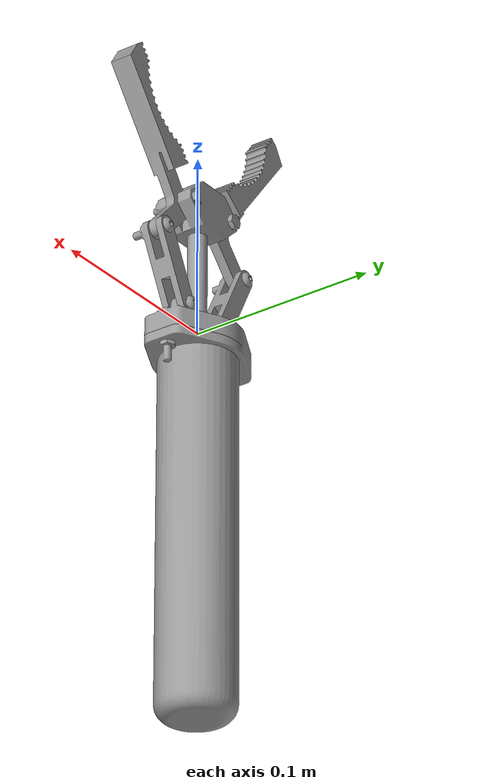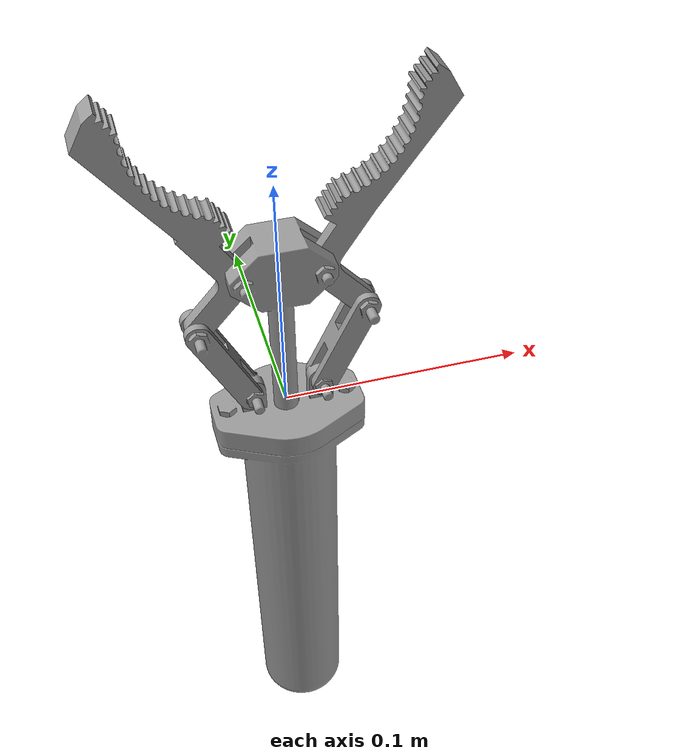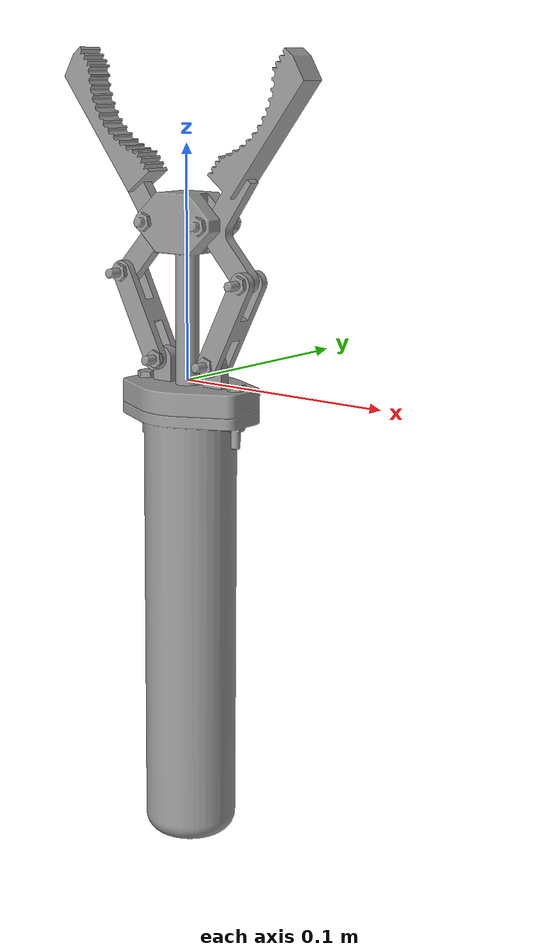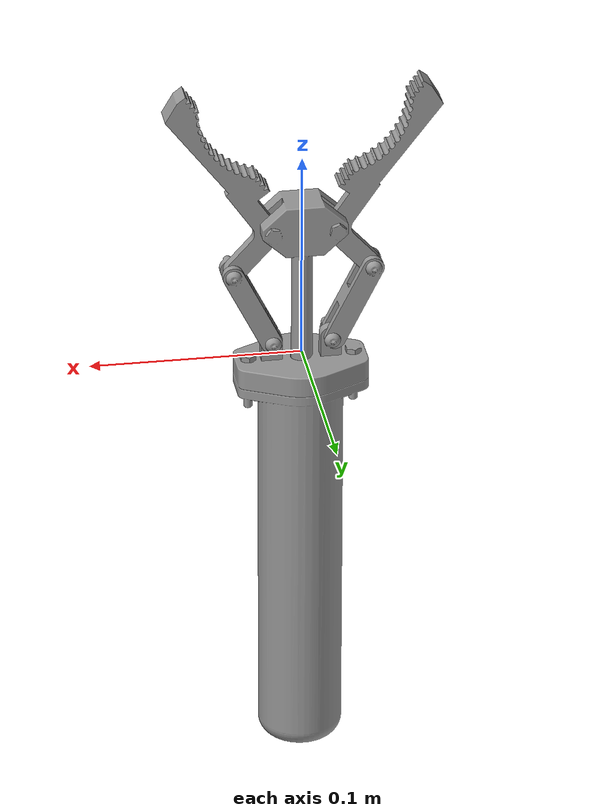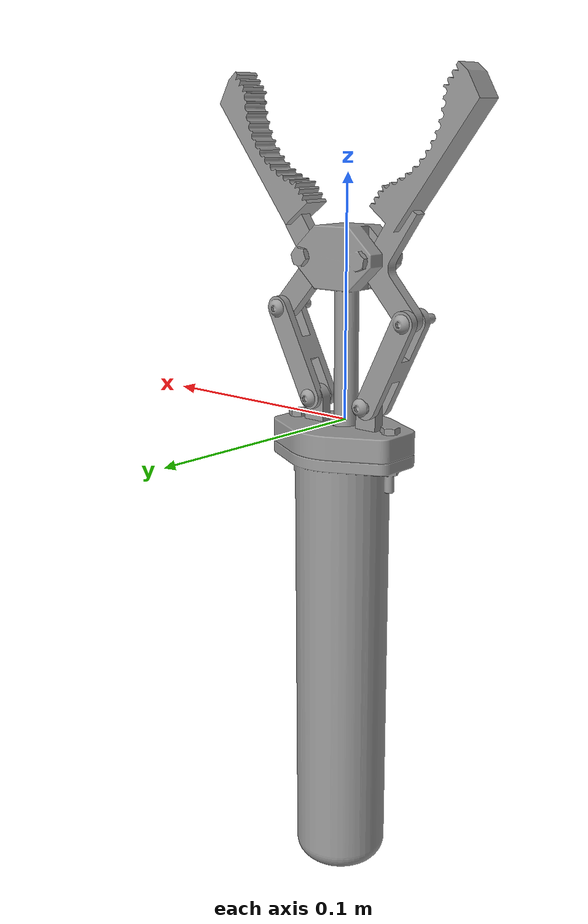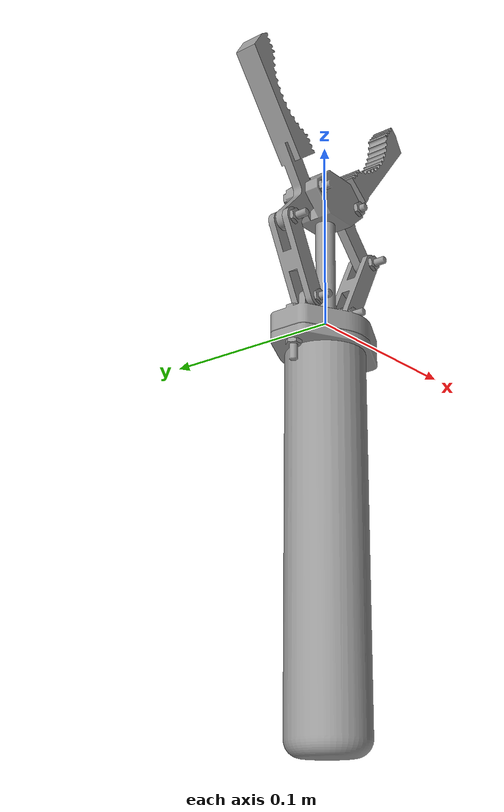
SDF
<?xml version='1.0'?>
<sdf version='1.7'>
  <model name='garra'>
    <link name='link_0'>
      <inertial>
        <mass>1</mass>
        <inertia>
          <ixx>0.166667</ixx>
          <ixy>0</ixy>
          <ixz>0</ixz>
          <iyy>0.166667</iyy>
          <iyz>0</iyz>
          <izz>0.166667</izz>
        </inertia>
        <pose>0 0 0 0 -0 0</pose>
      </inertial>
      <pose>0 0 -0.206667 0 -0 0</pose>
      <gravity>1</gravity>
      <self_collide>0</self_collide>
      <kinematic>0</kinematic>
      <enable_wind>0</enable_wind>
      <visual name='visual'>
        <pose>0 0 0 0 -0 0</pose>
        <geometry>
          <mesh>
            <uri>/home/igorcolonna/Documentos/projetinhos/Gazebo/base.stl</uri>
            <scale>1 1 1</scale>
          </mesh>
        </geometry>
        <material>
          <lighting>1</lighting>
          <script>
            <uri>file://media/materials/scripts/gazebo.material</uri>
            <name>Gazebo/Grey</name>
          </script>
          <shader type='pixel'>
            <normal_map>__default__</normal_map>
          </shader>
          <ambient>0.3 0.3 0.3 1</ambient>
          <diffuse>0.7 0.7 0.7 1</diffuse>
          <specular>0.01 0.01 0.01 1</specular>
          <emissive>0 0 0 1</emissive>
        </material>
        <transparency>0</transparency>
        <cast_shadows>1</cast_shadows>
      </visual>
      <visual name='ModelPreview_0::link_0::visual_3'>
        <pose>0 0 0 0 -0 0</pose>
        <geometry>
          <mesh>
            <uri>/home/igorcolonna/Documentos/projetinhos/Gazebo/base.stl</uri>
            <scale>1 1 1</scale>
          </mesh>
        </geometry>
        <material>
          <lighting>1</lighting>
          <script>
            <uri>file://media/materials/scripts/gazebo.material</uri>
            <name>Gazebo/Grey</name>
          </script>
          <shader type='pixel'>
            <normal_map>__default__</normal_map>
          </shader>
          <ambient>0.3 0.3 0.3 1</ambient>
          <diffuse>0.7 0.7 0.7 1</diffuse>
          <specular>0.01 0.01 0.01 1</specular>
          <emissive>0 0 0 1</emissive>
        </material>
        <transparency>0</transparency>
        <cast_shadows>1</cast_shadows>
      </visual>
      <visual name='ModelPreview_0::link_0::visual_1'>
        <pose>0 0 0 0 -0 0</pose>
        <geometry>
          <mesh>
            <uri>/home/igorcolonna/Documentos/projetinhos/Gazebo/base.stl</uri>
            <scale>1 1 1</scale>
          </mesh>
        </geometry>
        <material>
          <lighting>1</lighting>
          <script>
            <uri>file://media/materials/scripts/gazebo.material</uri>
            <name>Gazebo/Grey</name>
          </script>
          <shader type='pixel'>
            <normal_map>__default__</normal_map>
          </shader>
          <ambient>0.3 0.3 0.3 1</ambient>
          <diffuse>0.7 0.7 0.7 1</diffuse>
          <specular>0.01 0.01 0.01 1</specular>
          <emissive>0 0 0 1</emissive>
        </material>
        <transparency>0</transparency>
        <cast_shadows>1</cast_shadows>
      </visual>
      <visual name='ModelPreview_0::link_0::visual_2'>
        <pose>0 0 0 0 -0 0</pose>
        <geometry>
          <mesh>
            <uri>/home/igorcolonna/Documentos/projetinhos/Gazebo/base.stl</uri>
            <scale>1 1 1</scale>
          </mesh>
        </geometry>
        <material>
          <lighting>1</lighting>
          <script>
            <uri>file://media/materials/scripts/gazebo.material</uri>
            <name>Gazebo/Grey</name>
          </script>
          <shader type='pixel'>
            <normal_map>__default__</normal_map>
          </shader>
          <ambient>0.3 0.3 0.3 1</ambient>
          <diffuse>0.7 0.7 0.7 1</diffuse>
          <specular>0.01 0.01 0.01 1</specular>
          <emissive>0 0 0 1</emissive>
        </material>
        <transparency>0</transparency>
        <cast_shadows>1</cast_shadows>
      </visual>
      <collision name='collision'>
        <laser_retro>0</laser_retro>
        <max_contacts>10</max_contacts>
        <pose>0 0 0 0 -0 0</pose>
        <geometry>
          <mesh>
            <uri>/home/igorcolonna/Documentos/projetinhos/Gazebo/base.stl</uri>
            <scale>1 1 1</scale>
          </mesh>
        </geometry>
        <surface>
          <friction>
            <ode>
              <mu>1</mu>
              <mu2>1</mu2>
              <fdir1>0 0 0</fdir1>
              <slip1>0</slip1>
              <slip2>0</slip2>
            </ode>
            <torsional>
              <coefficient>1</coefficient>
              <patch_radius>0</patch_radius>
              <surface_radius>0</surface_radius>
              <use_patch_radius>1</use_patch_radius>
              <ode>
                <slip>0</slip>
              </ode>
            </torsional>
          </friction>
          <bounce>
            <restitution_coefficient>0</restitution_coefficient>
            <threshold>1e+06</threshold>
          </bounce>
          <contact>
            <collide_without_contact>0</collide_without_contact>
            <collide_without_contact_bitmask>1</collide_without_contact_bitmask>
            <collide_bitmask>1</collide_bitmask>
            <ode>
              <soft_cfm>0</soft_cfm>
              <soft_erp>0.2</soft_erp>
              <kp>1e+13</kp>
              <kd>1</kd>
              <max_vel>0.01</max_vel>
              <min_depth>0</min_depth>
            </ode>
            <bullet>
              <split_impulse>1</split_impulse>
              <split_impulse_penetration_threshold>-0.01</split_impulse_penetration_threshold>
              <soft_cfm>0</soft_cfm>
              <soft_erp>0.2</soft_erp>
              <kp>1e+13</kp>
              <kd>1</kd>
            </bullet>
          </contact>
        </surface>
      </collision>
    </link>
    <link name='link_3'>
      <inertial>
        <mass>1</mass>
        <inertia>
          <ixx>0.166667</ixx>
          <ixy>0</ixy>
          <ixz>0</ixz>
          <iyy>0.166667</iyy>
          <iyz>0</iyz>
          <izz>0.166667</izz>
        </inertia>
        <pose>0 0 0 0 -0 0</pose>
      </inertial>
      <pose>0 0 0.063333 0 -0 0</pose>
      <gravity>1</gravity>
      <self_collide>0</self_collide>
      <kinematic>0</kinematic>
      <enable_wind>0</enable_wind>
      <visual name='visual'>
        <pose>0 0 0 0 -0 0</pose>
        <geometry>
          <mesh>
            <uri>/home/igorcolonna/Documentos/projetinhos/Gazebo/linear_actuator.stl</uri>
            <scale>1 1 1</scale>
          </mesh>
        </geometry>
        <material>
          <lighting>1</lighting>
          <script>
            <uri>file://media/materials/scripts/gazebo.material</uri>
            <name>Gazebo/Grey</name>
          </script>
          <shader type='pixel'>
            <normal_map>__default__</normal_map>
          </shader>
          <ambient>0.3 0.3 0.3 1</ambient>
          <diffuse>0.7 0.7 0.7 1</diffuse>
          <specular>0.01 0.01 0.01 1</specular>
          <emissive>0 0 0 1</emissive>
        </material>
        <transparency>0</transparency>
        <cast_shadows>1</cast_shadows>
      </visual>
      <collision name='collision'>
        <laser_retro>0</laser_retro>
        <max_contacts>10</max_contacts>
        <pose>0 0 0 0 -0 0</pose>
        <geometry>
          <mesh>
            <uri>/home/igorcolonna/Documentos/projetinhos/Gazebo/linear_actuator.stl</uri>
            <scale>1 1 1</scale>
          </mesh>
        </geometry>
        <surface>
          <friction>
            <ode>
              <mu>1</mu>
              <mu2>1</mu2>
              <fdir1>0 0 0</fdir1>
              <slip1>0</slip1>
              <slip2>0</slip2>
            </ode>
            <torsional>
              <coefficient>1</coefficient>
              <patch_radius>0</patch_radius>
              <surface_radius>0</surface_radius>
              <use_patch_radius>1</use_patch_radius>
              <ode>
                <slip>0</slip>
              </ode>
            </torsional>
          </friction>
          <bounce>
            <restitution_coefficient>0</restitution_coefficient>
            <threshold>1e+06</threshold>
          </bounce>
          <contact>
            <collide_without_contact>0</collide_without_contact>
            <collide_without_contact_bitmask>1</collide_without_contact_bitmask>
            <collide_bitmask>1</collide_bitmask>
            <ode>
              <soft_cfm>0</soft_cfm>
              <soft_erp>0.2</soft_erp>
              <kp>1e+13</kp>
              <kd>1</kd>
              <max_vel>0.01</max_vel>
              <min_depth>0</min_depth>
            </ode>
            <bullet>
              <split_impulse>1</split_impulse>
              <split_impulse_penetration_threshold>-0.01</split_impulse_penetration_threshold>
              <soft_cfm>0</soft_cfm>
              <soft_erp>0.2</soft_erp>
              <kp>1e+13</kp>
              <kd>1</kd>
            </bullet>
          </contact>
        </surface>
      </collision>
    </link>
    <link name='link_6'>
      <inertial>
        <mass>1</mass>
        <inertia>
          <ixx>0.166667</ixx>
          <ixy>0</ixy>
          <ixz>0</ixz>
          <iyy>0.166667</iyy>
          <iyz>0</iyz>
          <izz>0.166667</izz>
        </inertia>
        <pose>0 0 0 0 -0 0</pose>
      </inertial>
      <pose>-0.015 0 0.063333 0 -0 0</pose>
      <gravity>1</gravity>
      <self_collide>0</self_collide>
      <kinematic>0</kinematic>
      <enable_wind>0</enable_wind>
      <visual name='visual'>
        <pose>0 0 0 0 -0 0</pose>
        <geometry>
          <mesh>
            <uri>/home/igorcolonna/Documentos/projetinhos/Gazebo/left_claw.stl</uri>
            <scale>1 1 1</scale>
          </mesh>
        </geometry>
        <material>
          <lighting>1</lighting>
          <script>
            <uri>file://media/materials/scripts/gazebo.material</uri>
            <name>Gazebo/Grey</name>
          </script>
          <shader type='pixel'>
            <normal_map>__default__</normal_map>
          </shader>
          <ambient>0.3 0.3 0.3 1</ambient>
          <diffuse>0.7 0.7 0.7 1</diffuse>
          <specular>0.01 0.01 0.01 1</specular>
          <emissive>0 0 0 1</emissive>
        </material>
        <transparency>0</transparency>
        <cast_shadows>1</cast_shadows>
      </visual>
      <collision name='collision'>
        <laser_retro>0</laser_retro>
        <max_contacts>10</max_contacts>
        <pose>0 0 0 0 -0 0</pose>
        <geometry>
          <mesh>
            <uri>/home/igorcolonna/Documentos/projetinhos/Gazebo/left_claw.stl</uri>
            <scale>1 1 1</scale>
          </mesh>
        </geometry>
        <surface>
          <friction>
            <ode>
              <mu>1</mu>
              <mu2>1</mu2>
              <fdir1>0 0 0</fdir1>
              <slip1>0</slip1>
              <slip2>0</slip2>
            </ode>
            <torsional>
              <coefficient>1</coefficient>
              <patch_radius>0</patch_radius>
              <surface_radius>0</surface_radius>
              <use_patch_radius>1</use_patch_radius>
              <ode>
                <slip>0</slip>
              </ode>
            </torsional>
          </friction>
          <bounce>
            <restitution_coefficient>0</restitution_coefficient>
            <threshold>1e+06</threshold>
          </bounce>
          <contact>
            <collide_without_contact>0</collide_without_contact>
            <collide_without_contact_bitmask>1</collide_without_contact_bitmask>
            <collide_bitmask>1</collide_bitmask>
            <ode>
              <soft_cfm>0</soft_cfm>
              <soft_erp>0.2</soft_erp>
              <kp>1e+13</kp>
              <kd>1</kd>
              <max_vel>0.01</max_vel>
              <min_depth>0</min_depth>
            </ode>
            <bullet>
              <split_impulse>1</split_impulse>
              <split_impulse_penetration_threshold>-0.01</split_impulse_penetration_threshold>
              <soft_cfm>0</soft_cfm>
              <soft_erp>0.2</soft_erp>
              <kp>1e+13</kp>
              <kd>1</kd>
            </bullet>
          </contact>
        </surface>
      </collision>
    </link>
    <link name='link_7'>
      <inertial>
        <mass>1</mass>
        <inertia>
          <ixx>0.166667</ixx>
          <ixy>0</ixy>
          <ixz>0</ixz>
          <iyy>0.166667</iyy>
          <iyz>0</iyz>
          <izz>0.166667</izz>
        </inertia>
        <pose>0 0 0 0 -0 0</pose>
      </inertial>
      <pose>-0.015 0 0.008333 0 -0 0</pose>
      <gravity>1</gravity>
      <self_collide>0</self_collide>
      <kinematic>0</kinematic>
      <enable_wind>0</enable_wind>
      <visual name='visual'>
        <pose>0 0 0 0 -0 0</pose>
        <geometry>
          <mesh>
            <uri>/home/igorcolonna/Documentos/projetinhos/Gazebo/left_joint.stl</uri>
            <scale>1 1 1</scale>
          </mesh>
        </geometry>
        <material>
          <lighting>1</lighting>
          <script>
            <uri>file://media/materials/scripts/gazebo.material</uri>
            <name>Gazebo/Grey</name>
          </script>
          <shader type='pixel'>
            <normal_map>__default__</normal_map>
          </shader>
          <ambient>0.3 0.3 0.3 1</ambient>
          <diffuse>0.7 0.7 0.7 1</diffuse>
          <specular>0.01 0.01 0.01 1</specular>
          <emissive>0 0 0 1</emissive>
        </material>
        <transparency>0</transparency>
        <cast_shadows>1</cast_shadows>
      </visual>
      <collision name='collision'>
        <laser_retro>0</laser_retro>
        <max_contacts>10</max_contacts>
        <pose>0 0 0 0 -0 0</pose>
        <geometry>
          <mesh>
            <uri>/home/igorcolonna/Documentos/projetinhos/Gazebo/left_joint.stl</uri>
            <scale>1 1 1</scale>
          </mesh>
        </geometry>
        <surface>
          <friction>
            <ode>
              <mu>1</mu>
              <mu2>1</mu2>
              <fdir1>0 0 0</fdir1>
              <slip1>0</slip1>
              <slip2>0</slip2>
            </ode>
            <torsional>
              <coefficient>1</coefficient>
              <patch_radius>0</patch_radius>
              <surface_radius>0</surface_radius>
              <use_patch_radius>1</use_patch_radius>
              <ode>
                <slip>0</slip>
              </ode>
            </torsional>
          </friction>
          <bounce>
            <restitution_coefficient>0</restitution_coefficient>
            <threshold>1e+06</threshold>
          </bounce>
          <contact>
            <collide_without_contact>0</collide_without_contact>
            <collide_without_contact_bitmask>1</collide_without_contact_bitmask>
            <collide_bitmask>1</collide_bitmask>
            <ode>
              <soft_cfm>0</soft_cfm>
              <soft_erp>0.2</soft_erp>
              <kp>1e+13</kp>
              <kd>1</kd>
              <max_vel>0.01</max_vel>
              <min_depth>0</min_depth>
            </ode>
            <bullet>
              <split_impulse>1</split_impulse>
              <split_impulse_penetration_threshold>-0.01</split_impulse_penetration_threshold>
              <soft_cfm>0</soft_cfm>
              <soft_erp>0.2</soft_erp>
              <kp>1e+13</kp>
              <kd>1</kd>
            </bullet>
          </contact>
        </surface>
      </collision>
    </link>
    <link name='link_8'>
      <inertial>
        <mass>1</mass>
        <inertia>
          <ixx>0.166667</ixx>
          <ixy>0</ixy>
          <ixz>0</ixz>
          <iyy>0.166667</iyy>
          <iyz>0</iyz>
          <izz>0.166667</izz>
        </inertia>
        <pose>0 0 0 0 -0 0</pose>
      </inertial>
      <pose>0.015 0 0.063333 0 -0 0</pose>
      <gravity>1</gravity>
      <self_collide>0</self_collide>
      <kinematic>0</kinematic>
      <enable_wind>0</enable_wind>
      <visual name='visual'>
        <pose>0 0 0 0 -0 0</pose>
        <geometry>
          <mesh>
            <uri>/home/igorcolonna/Documentos/projetinhos/Gazebo/right_claw.stl</uri>
            <scale>1 1 1</scale>
          </mesh>
        </geometry>
        <material>
          <lighting>1</lighting>
          <script>
            <uri>file://media/materials/scripts/gazebo.material</uri>
            <name>Gazebo/Grey</name>
          </script>
          <shader type='pixel'>
            <normal_map>__default__</normal_map>
          </shader>
          <ambient>0.3 0.3 0.3 1</ambient>
          <diffuse>0.7 0.7 0.7 1</diffuse>
          <specular>0.01 0.01 0.01 1</specular>
          <emissive>0 0 0 1</emissive>
        </material>
        <transparency>0</transparency>
        <cast_shadows>1</cast_shadows>
      </visual>
      <collision name='collision'>
        <laser_retro>0</laser_retro>
        <max_contacts>10</max_contacts>
        <pose>0 0 0 0 -0 0</pose>
        <geometry>
          <mesh>
            <uri>/home/igorcolonna/Documentos/projetinhos/Gazebo/right_claw.stl</uri>
            <scale>1 1 1</scale>
          </mesh>
        </geometry>
        <surface>
          <friction>
            <ode>
              <mu>1</mu>
              <mu2>1</mu2>
              <fdir1>0 0 0</fdir1>
              <slip1>0</slip1>
              <slip2>0</slip2>
            </ode>
            <torsional>
              <coefficient>1</coefficient>
              <patch_radius>0</patch_radius>
              <surface_radius>0</surface_radius>
              <use_patch_radius>1</use_patch_radius>
              <ode>
                <slip>0</slip>
              </ode>
            </torsional>
          </friction>
          <bounce>
            <restitution_coefficient>0</restitution_coefficient>
            <threshold>1e+06</threshold>
          </bounce>
          <contact>
            <collide_without_contact>0</collide_without_contact>
            <collide_without_contact_bitmask>1</collide_without_contact_bitmask>
            <collide_bitmask>1</collide_bitmask>
            <ode>
              <soft_cfm>0</soft_cfm>
              <soft_erp>0.2</soft_erp>
              <kp>1e+13</kp>
              <kd>1</kd>
              <max_vel>0.01</max_vel>
              <min_depth>0</min_depth>
            </ode>
            <bullet>
              <split_impulse>1</split_impulse>
              <split_impulse_penetration_threshold>-0.01</split_impulse_penetration_threshold>
              <soft_cfm>0</soft_cfm>
              <soft_erp>0.2</soft_erp>
              <kp>1e+13</kp>
              <kd>1</kd>
            </bullet>
          </contact>
        </surface>
      </collision>
    </link>
    <link name='link_9'>
      <inertial>
        <mass>1</mass>
        <inertia>
          <ixx>0.166667</ixx>
          <ixy>0</ixy>
          <ixz>0</ixz>
          <iyy>0.166667</iyy>
          <iyz>0</iyz>
          <izz>0.166667</izz>
        </inertia>
        <pose>0 0 0 0 -0 0</pose>
      </inertial>
      <pose>0.015 0 0.008333 0 -0 0</pose>
      <gravity>1</gravity>
      <self_collide>0</self_collide>
      <kinematic>0</kinematic>
      <enable_wind>0</enable_wind>
      <visual name='visual'>
        <pose>0 0 0 0 -0 0</pose>
        <geometry>
          <mesh>
            <uri>/home/igorcolonna/Documentos/projetinhos/Gazebo/right_joint.stl</uri>
            <scale>1 1 1</scale>
          </mesh>
        </geometry>
        <material>
          <lighting>1</lighting>
          <script>
            <uri>file://media/materials/scripts/gazebo.material</uri>
            <name>Gazebo/Grey</name>
          </script>
          <shader type='pixel'>
            <normal_map>__default__</normal_map>
          </shader>
          <ambient>0.3 0.3 0.3 1</ambient>
          <diffuse>0.7 0.7 0.7 1</diffuse>
          <specular>0.01 0.01 0.01 1</specular>
          <emissive>0 0 0 1</emissive>
        </material>
        <transparency>0</transparency>
        <cast_shadows>1</cast_shadows>
      </visual>
      <collision name='collision'>
        <laser_retro>0</laser_retro>
        <max_contacts>10</max_contacts>
        <pose>0 0 0 0 -0 0</pose>
        <geometry>
          <mesh>
            <uri>/home/igorcolonna/Documentos/projetinhos/Gazebo/right_joint.stl</uri>
            <scale>1 1 1</scale>
          </mesh>
        </geometry>
        <surface>
          <friction>
            <ode>
              <mu>1</mu>
              <mu2>1</mu2>
              <fdir1>0 0 0</fdir1>
              <slip1>0</slip1>
              <slip2>0</slip2>
            </ode>
            <torsional>
              <coefficient>1</coefficient>
              <patch_radius>0</patch_radius>
              <surface_radius>0</surface_radius>
              <use_patch_radius>1</use_patch_radius>
              <ode>
                <slip>0</slip>
              </ode>
            </torsional>
          </friction>
          <bounce>
            <restitution_coefficient>0</restitution_coefficient>
            <threshold>1e+06</threshold>
          </bounce>
          <contact>
            <collide_without_contact>0</collide_without_contact>
            <collide_without_contact_bitmask>1</collide_without_contact_bitmask>
            <collide_bitmask>1</collide_bitmask>
            <ode>
              <soft_cfm>0</soft_cfm>
              <soft_erp>0.2</soft_erp>
              <kp>1e+13</kp>
              <kd>1</kd>
              <max_vel>0.01</max_vel>
              <min_depth>0</min_depth>
            </ode>
            <bullet>
              <split_impulse>1</split_impulse>
              <split_impulse_penetration_threshold>-0.01</split_impulse_penetration_threshold>
              <soft_cfm>0</soft_cfm>
              <soft_erp>0.2</soft_erp>
              <kp>1e+13</kp>
              <kd>1</kd>
            </bullet>
          </contact>
        </surface>
      </collision>
    </link>
    <joint name='link_0_JOINT_1' type='prismatic'>
      <parent>link_0</parent>
      <child>link_3</child>
      <pose>0 0 0 0 -0 0</pose>
      <axis>
        <xyz>0 0 1</xyz>
        <limit>
          <lower>-1.79769e+308</lower>
          <upper>1.79769e+308</upper>
          <effort>-1</effort>
          <velocity>-1</velocity>
        </limit>
        <dynamics>
          <spring_reference>0</spring_reference>
          <spring_stiffness>0</spring_stiffness>
          <damping>0</damping>
          <friction>0</friction>
        </dynamics>
      </axis>
      <physics>
        <ode>
          <limit>
            <cfm>0</cfm>
            <erp>0.2</erp>
          </limit>
          <suspension>
            <cfm>0</cfm>
            <erp>0.2</erp>
          </suspension>
        </ode>
      </physics>
    </joint>
    <joint name='link_0_JOINT_4' type='revolute'>
      <parent>link_0</parent>
      <child>link_9</child>
      <pose>0 0 0 0 -0 0</pose>
      <axis>
        <xyz>-0 -1 -0</xyz>
        <limit>
          <lower>-1.79769e+308</lower>
          <upper>1.79769e+308</upper>
          <effort>-1</effort>
          <velocity>-1</velocity>
        </limit>
        <dynamics>
          <spring_reference>0</spring_reference>
          <spring_stiffness>0</spring_stiffness>
          <damping>0</damping>
        </dynamics>
      </axis>
      <physics>
        <ode>
          <limit>
            <cfm>0</cfm>
            <erp>0.2</erp>
          </limit>
          <suspension>
            <cfm>0</cfm>
            <erp>0.2</erp>
          </suspension>
        </ode>
      </physics>
    </joint>
    <joint name='link_0_JOINT_6' type='revolute'>
      <parent>link_0</parent>
      <child>link_7</child>
      <pose>0 0 0 0 -0 0</pose>
      <axis>
        <xyz>-0 -1 -0</xyz>
        <limit>
          <lower>-1.79769e+308</lower>
          <upper>1.79769e+308</upper>
          <effort>-1</effort>
          <velocity>-1</velocity>
        </limit>
        <dynamics>
          <spring_reference>0</spring_reference>
          <spring_stiffness>0</spring_stiffness>
          <damping>0</damping>
        </dynamics>
      </axis>
      <physics>
        <ode>
          <limit>
            <cfm>0</cfm>
            <erp>0.2</erp>
          </limit>
          <suspension>
            <cfm>0</cfm>
            <erp>0.2</erp>
          </suspension>
        </ode>
      </physics>
    </joint>
    <joint name='link_3_JOINT_2' type='revolute'>
      <parent>link_3</parent>
      <child>link_6</child>
      <pose>0 0 0 0 -0 0</pose>
      <axis>
        <xyz>0 1 0</xyz>
        <limit>
          <lower>-1.79769e+308</lower>
          <upper>1.79769e+308</upper>
          <effort>-1</effort>
          <velocity>-1</velocity>
        </limit>
        <dynamics>
          <spring_reference>0</spring_reference>
          <spring_stiffness>0</spring_stiffness>
          <damping>0</damping>
        </dynamics>
      </axis>
      <physics>
        <ode>
          <limit>
            <cfm>0</cfm>
            <erp>0.2</erp>
          </limit>
          <suspension>
            <cfm>0</cfm>
            <erp>0.2</erp>
          </suspension>
        </ode>
      </physics>
    </joint>
    <joint name='link_3_JOINT_3' type='revolute'>
      <parent>link_3</parent>
      <child>link_8</child>
      <pose>0 0 0 0 -0 0</pose>
      <axis>
        <xyz>0 1 0</xyz>
        <limit>
          <lower>-1.79769e+308</lower>
          <upper>1.79769e+308</upper>
          <effort>-1</effort>
          <velocity>-1</velocity>
        </limit>
        <dynamics>
          <spring_reference>0</spring_reference>
          <spring_stiffness>0</spring_stiffness>
          <damping>0</damping>
        </dynamics>
      </axis>
      <physics>
        <ode>
          <limit>
            <cfm>0</cfm>
            <erp>0.2</erp>
          </limit>
          <suspension>
            <cfm>0</cfm>
            <erp>0.2</erp>
          </suspension>
        </ode>
      </physics>
    </joint>
    <joint name='link_6_JOINT_7' type='revolute'>
      <parent>link_6</parent>
      <child>link_7</child>
      <pose>0 0 0 0 -0 0</pose>
      <axis>
        <xyz>0 1 0</xyz>
        <limit>
          <lower>-1.79769e+308</lower>
          <upper>1.79769e+308</upper>
          <effort>-1</effort>
          <velocity>-1</velocity>
        </limit>
        <dynamics>
          <spring_reference>0</spring_reference>
          <spring_stiffness>0</spring_stiffness>
          <damping>0</damping>
        </dynamics>
      </axis>
      <physics>
        <ode>
          <limit>
            <cfm>0</cfm>
            <erp>0.2</erp>
          </limit>
          <suspension>
            <cfm>0</cfm>
            <erp>0.2</erp>
          </suspension>
        </ode>
      </physics>
    </joint>
    <joint name='link_8_JOINT_8' type='revolute'>
      <parent>link_8</parent>
      <child>link_9</child>
      <pose>0 0 0 0 -0 0</pose>
      <axis>
        <xyz>0 1 0</xyz>
        <limit>
          <lower>-1.79769e+308</lower>
          <upper>1.79769e+308</upper>
          <effort>-1</effort>
          <velocity>-1</velocity>
        </limit>
        <dynamics>
          <spring_reference>0</spring_reference>
          <spring_stiffness>0</spring_stiffness>
          <damping>0</damping>
        </dynamics>
      </axis>
      <physics>
        <ode>
          <limit>
            <cfm>0</cfm>
            <erp>0.2</erp>
          </limit>
          <suspension>
            <cfm>0</cfm>
            <erp>0.2</erp>
          </suspension>
        </ode>
      </physics>
    </joint>
    <static>0</static>
    <allow_auto_disable>1</allow_auto_disable>
  </model>
</sdf>
